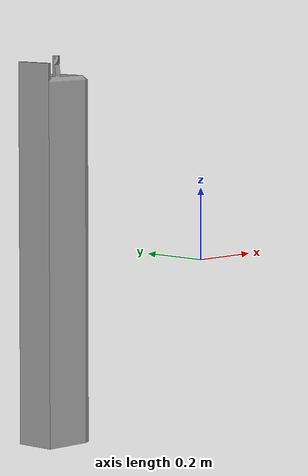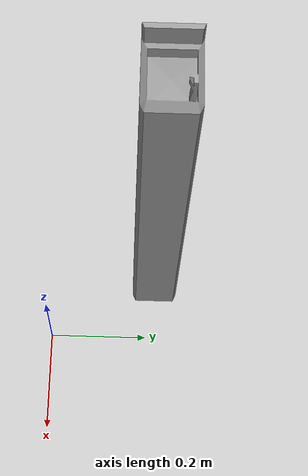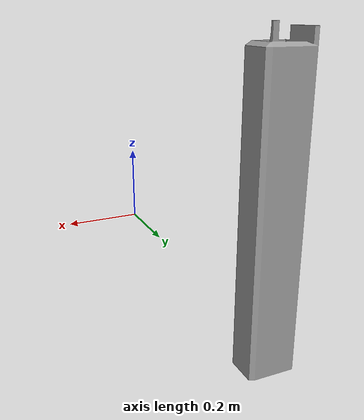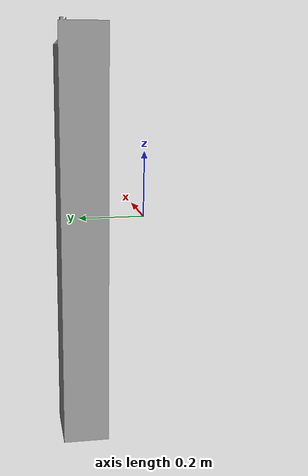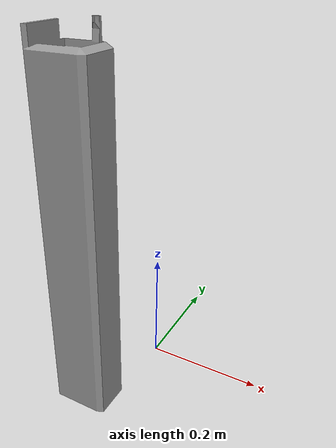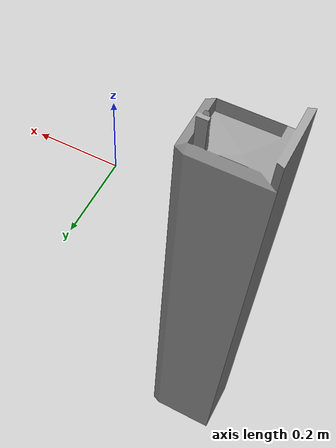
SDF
<?xml version='1.0'?>
<sdf version='1.6'>
  <model name='fontanella'>
    <link name='link_1'>
      <pose frame=''>-0.329467 0.222925 0 0 -0 0</pose>
      <inertial>
        <mass>0.0283905</mass>
        <inertia>
          <ixx>0.00240663</ixx>
          <ixy>0</ixy>
          <ixz>0</ixz>
          <iyy>0.00247658</iyy>
          <iyz>0</iyz>
          <izz>0.00015146</izz>
        </inertia>
        <pose frame=''>0 0 0 0 -0 0</pose>
      </inertial>
      <gravity>1</gravity>
      <self_collide>0</self_collide>
      <kinematic>0</kinematic>
      <visual name='visual'>
        <pose frame=''>-0.09 -0.05 -0.5 0 -0 0</pose>
        <geometry>
          <mesh>
            <uri>/home/matteo/Documenti/ciberfisico/hm2/Mezzanino/fontanella.dae</uri>
            <scale>0.475876 0.306351 1</scale>
          </mesh>
        </geometry>
        <material>
          <lighting>1</lighting>
          <script>
            <uri>file://media/materials/scripts/gazebo.material</uri>
            <name>Gazebo/Grey</name>
          </script>
          <ambient>0.3 0.3 0.3 1</ambient>
          <diffuse>0.7 0.7 0.7 1</diffuse>
          <specular>0.01 0.01 0.01 1</specular>
          <emissive>0 0 0 1</emissive>
          <shader type='vertex'>
            <normal_map>__default__</normal_map>
          </shader>
        </material>
        <cast_shadows>1</cast_shadows>
        <transparency>0</transparency>
      </visual>
      <collision name='collision'>
        <laser_retro>0</laser_retro>
        <max_contacts>10</max_contacts>
        <pose frame=''>0 0 0 0 -0 0</pose>
        <geometry>
          <box>
            <size>0.216246 0.131249 1</size>
          </box>
        </geometry>
        <surface>
          <friction>
            <ode>
              <mu>1</mu>
              <mu2>1</mu2>
              <fdir1>0 0 0</fdir1>
              <slip1>0</slip1>
              <slip2>0</slip2>
            </ode>
            <torsional>
              <coefficient>1</coefficient>
              <patch_radius>0</patch_radius>
              <surface_radius>0</surface_radius>
              <use_patch_radius>1</use_patch_radius>
              <ode>
                <slip>0</slip>
              </ode>
            </torsional>
          </friction>
          <bounce>
            <restitution_coefficient>0</restitution_coefficient>
            <threshold>1e+06</threshold>
          </bounce>
          <contact>
            <collide_without_contact>0</collide_without_contact>
            <collide_without_contact_bitmask>1</collide_without_contact_bitmask>
            <collide_bitmask>1</collide_bitmask>
            <ode>
              <soft_cfm>0</soft_cfm>
              <soft_erp>0.2</soft_erp>
              <kp>1e+13</kp>
              <kd>1</kd>
              <max_vel>0.01</max_vel>
              <min_depth>0</min_depth>
            </ode>
            <bullet>
              <split_impulse>1</split_impulse>
              <split_impulse_penetration_threshold>-0.01</split_impulse_penetration_threshold>
              <soft_cfm>0</soft_cfm>
              <soft_erp>0.2</soft_erp>
              <kp>1e+13</kp>
              <kd>1</kd>
            </bullet>
          </contact>
        </surface>
      </collision>
    </link>
    <static>0</static>
    <allow_auto_disable>1</allow_auto_disable>
  </model>
</sdf>
